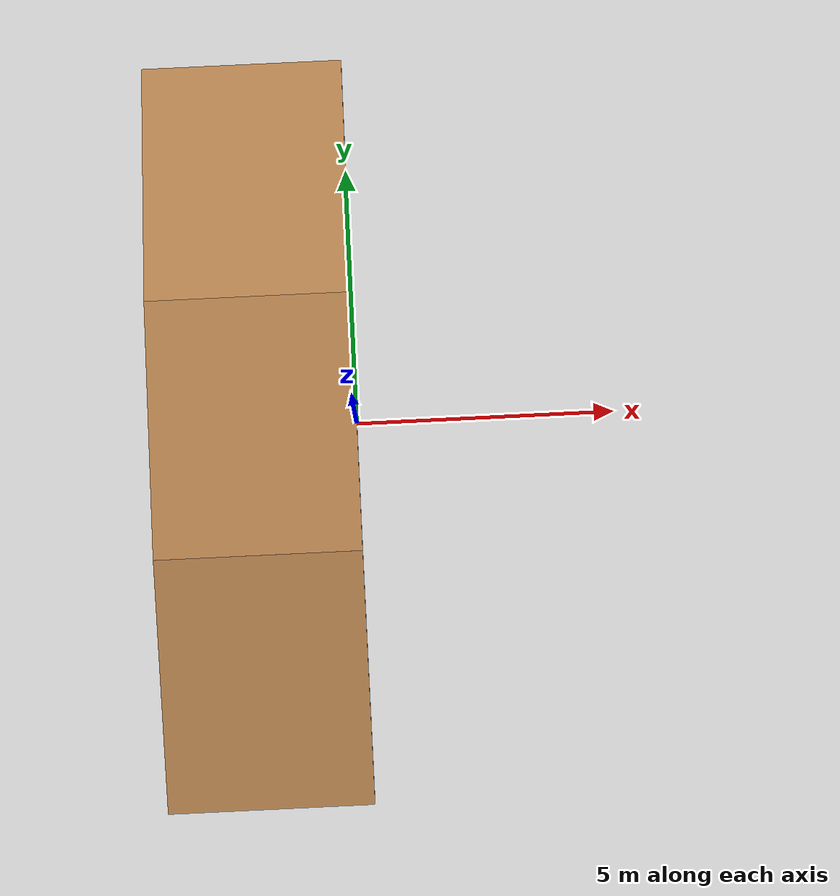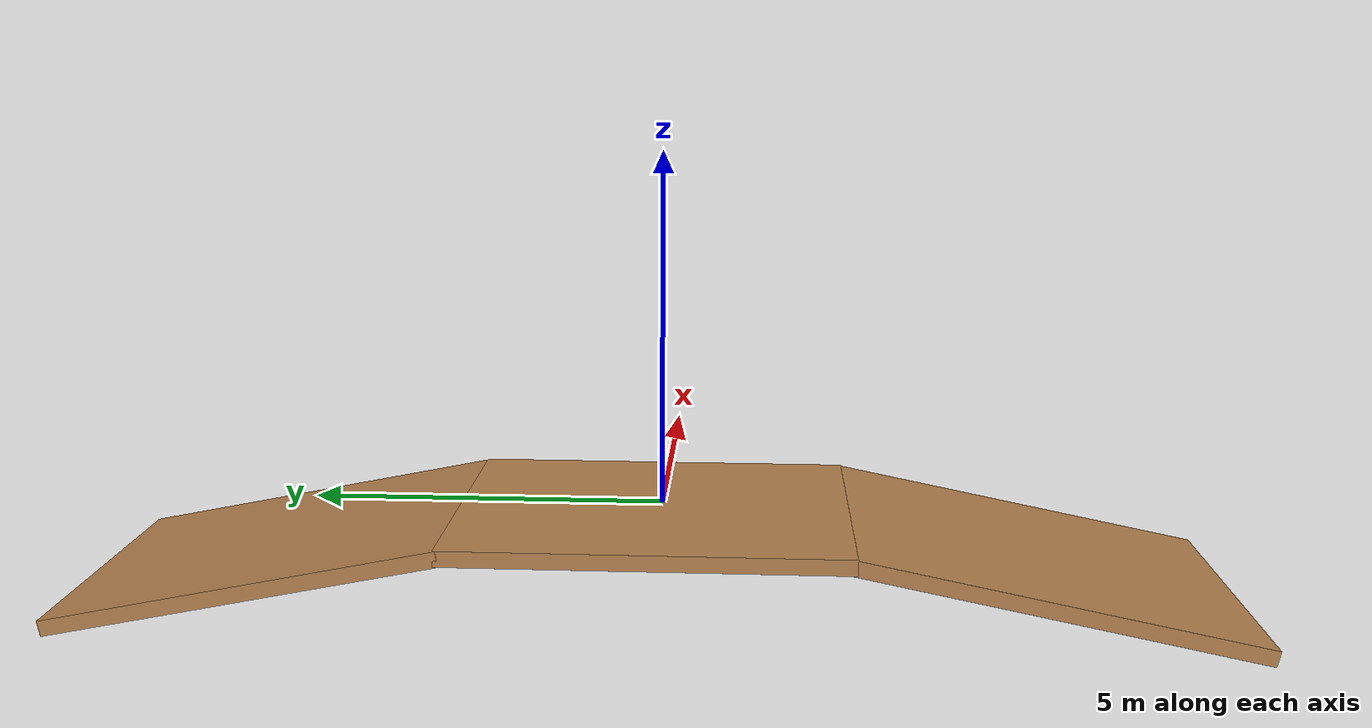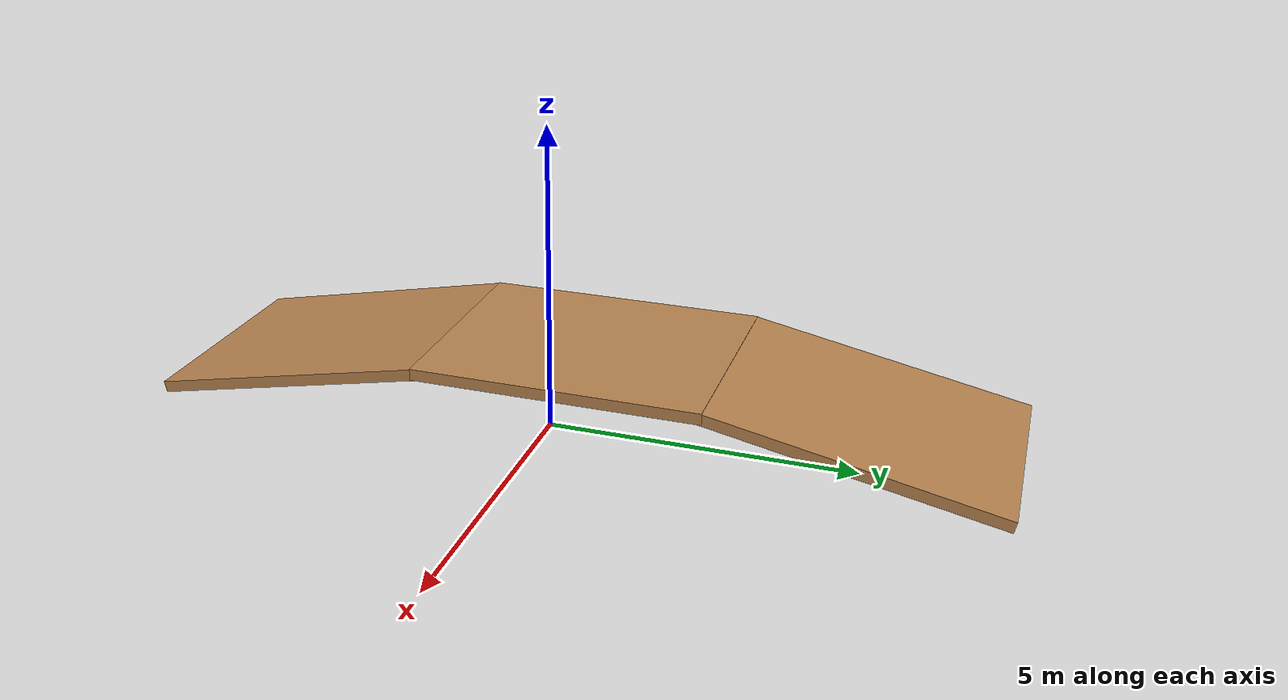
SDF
<?xml version="1.0"?>
<sdf version="1.4">
  <model name="basic_ramp">
    <static>true</static>
    <link name="link">
      <collision name="collision">
        <geometry>
          <box>
            <size>8 10 0.2</size>
          </box>
        </geometry>
        <surface>
          <friction>
            <ode>
              <mu>10</mu>
              <mu2>10</mu2>
            </ode>
          </friction>
        </surface>
      </collision>
      <visual name="visual_1">
        <pose>-2 4.9 0  -0.2 0 0</pose>
        <cast_shadows>false</cast_shadows>
        <geometry>
          <box>
            <size>4 5 0.2</size>
          </box>
        </geometry>
        <material>
          <script>
            <uri>file://media/materials/scripts/gazebo.material</uri>
            <name>Gazebo/Wood</name>
          </script>
        </material>
      </visual>
      <visual name="visual_2">
        <pose>-2 -4.9 0  0.2 0 0</pose>
        <cast_shadows>false</cast_shadows>
        <geometry>
          <box>
            <size>4 5 0.2</size>
          </box>
        </geometry>
        <material>
          <script>
            <uri>file://media/materials/scripts/gazebo.material</uri>
            <name>Gazebo/Wood</name>
          </script>
        </material>
      </visual>
      <visual name="visual_3">
        <pose>-2 0 0.5  0 0 0</pose>
        <cast_shadows>false</cast_shadows>
        <geometry>
          <box>
            <size>4 5 0.2</size>
          </box>
        </geometry>
        <material>
          <script>
            <uri>file://media/materials/scripts/gazebo.material</uri>
            <name>Gazebo/Wood</name>
          </script>
        </material>
      </visual>
    </link>
  </model>
</sdf>
